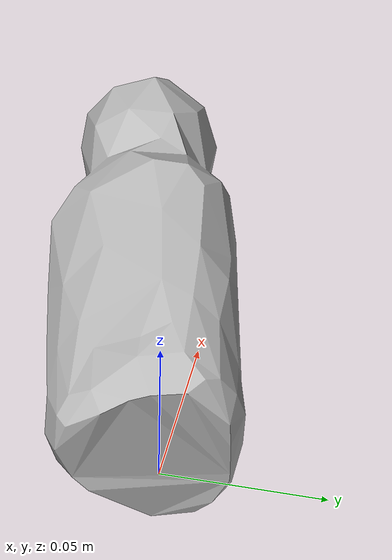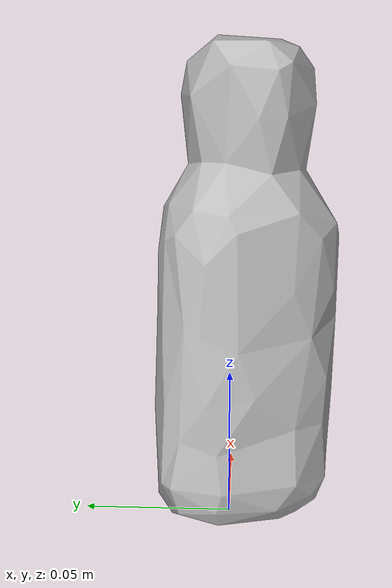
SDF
<?xml version='1.0'?>
<sdf version="1.4">
  <model name="pepto_bismol">
    <static>false</static>
    <link name="link">
      <inertial>
        <pose>0.0017791704170499057 -0.0032292013102113368 0.07192992292662774 -3.1060868536571897 0.005536985140415091 1.055019437602406</pose>
        <mass>0.04817040185959947</mass>
        <inertia>
          <ixx>7.355678579135756e-05</ixx>
          <ixy>-1.1071011427063024e-21</ixy>
          <ixz>1.3515957469481276e-20</ixz>
          <iyy>7.305600298609364e-05</iyy>
          <iyz>-6.952348263870671e-21</iyz>
          <izz>1.6278907179687513e-05</izz>
        </inertia>
      </inertial>
      <collision name="collision">
        <geometry>
          <mesh>
            <!-- Use a downsampled mesh for collisions -->
            <uri>model:///pepto_bismol/pepto_bismol_250_collision.obj</uri>
	        </mesh>
        </geometry>
        <surface>
      </surface>
      </collision>
      <visual name="visual">
        <geometry>
          <mesh>
            <uri>model:///pepto_bismol/optimized_tsdf_texture_mapped_mesh.obj</uri>
	        </mesh>
        </geometry>
        <material>
          <script>
            <uri>model:///pepto_bismol/pepto_bismol.material</uri>
            <name>pepto_bismol</name>
          </script>
        </material>
      </visual>
    </link>
  </model>
</sdf>
